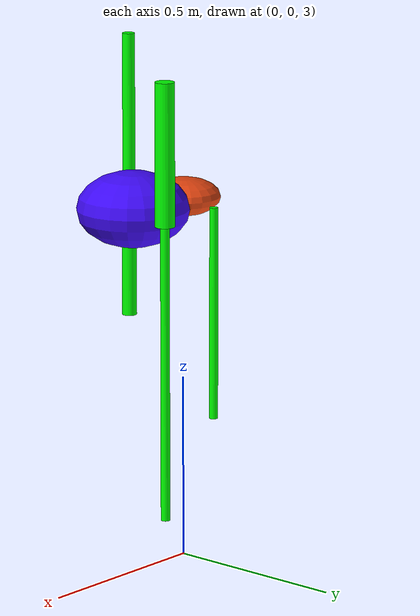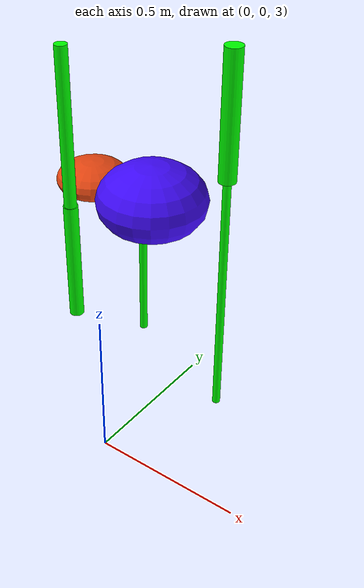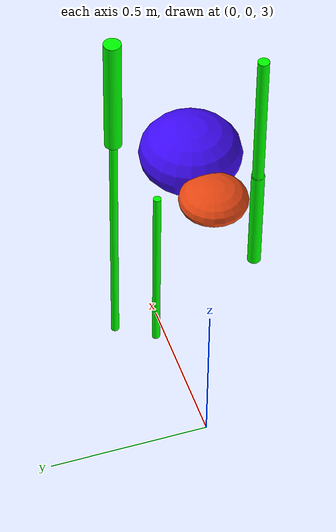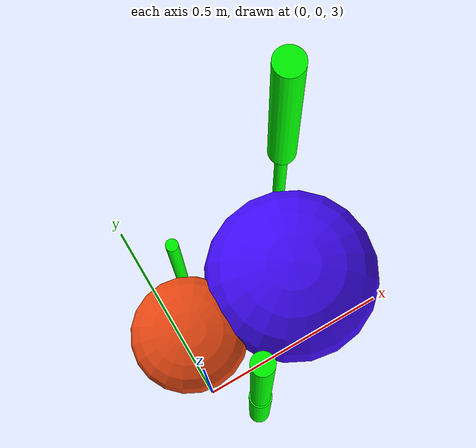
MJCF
<mujoco model="unnamed_model">
  <option timestep="0.01"/>
  <visual>
    <headlight ambient="0.5 0.5 0.5"/>
  </visual>
  <default>
    <default class="/"/>
  </default>
  <worldbody>
    <light name="//unnamed_light_0" class="/" pos="0 0 3" dir="0 0 -1" diffuse="0.5 0.5 0.5"/>
    <geom name="//unnamed_geom_0" class="/" type="plane" size="50 50 0.10000000000000001"/>
    <body name="//unnamed_body_0" pos="0 0 4">
      <joint name="//unnamed_joint_0" class="/" type="free"/>
      <geom name="//unnamed_geom_1" class="/" type="ellipsoid" size="0.10000000000000001 0.10000000000000001 0.050000000000000003" rgba="0.91000000000000003 0.27800000000000002 0.070999999999999994 1" pos="0 0 0"/>
      <geom name="//unnamed_geom_2" class="/" type="ellipsoid" size="0.14999999999999999 0.14999999999999999 0.10000000000000001" rgba="0.247 0.035000000000000003 0.97999999999999998 1" pos="0.20000000000000001 0 0"/>
      <body name="limb1" pos="0.050000000000000003 0.14999999999999999 -0.28776949967436416">
        <geom name="//unnamed_geom_3" class="/" type="cylinder" size="0.011519885648044941 0.28776949967436416" rgba="0 1 0 1"/>
        <joint name="limb1_joint" class="/" type="hinge" pos="0 0 0.28776949967436416" axis="0 1 0" range="-45 45"/>
      </body>
      <body name="limb2" pos="0.050000000000000003 -0.14999999999999999 -0.17011961616703841">
        <geom name="//unnamed_geom_4" class="/" type="cylinder" size="0.019646572941031962 0.17011961616703841" rgba="0 1 0 1"/>
        <joint name="limb2_joint" class="/" type="hinge" pos="0 0 0.17011961616703841" axis="0 1 0" range="-45 45"/>
      </body>
      <body name="limb3" pos="0.29999999999999999 0.20000000000000001 -0.39483240670167252">
        <geom name="//unnamed_geom_5" class="/" type="cylinder" size="0.01207307090812167 0.39483240670167252" rgba="0 1 0 1"/>
        <joint name="limb3_joint" class="/" type="hinge" pos="0 0 0.39483240670167252" axis="0 1 0" range="-45 45"/>
      </body>
      <body name="back_limb1" pos="0.050000000000000003 -0.14999999999999999 0.21465220423279086">
        <geom name="//unnamed_geom_6" class="/" type="cylinder" size="0.016785271627413133 0.21465220423279086" rgba="0 1 0 1"/>
        <joint name="back_limb1_joint" class="/" type="hinge" pos="0 0 -0.21465220423279086" axis="0 1 0" range="-45 45"/>
      </body>
      <body name="back_limb2" pos="0.29999999999999999 0.20000000000000001 0.18882671810588667">
        <geom name="//unnamed_geom_7" class="/" type="cylinder" size="0.025919505710851123 0.18882671810588667" rgba="0 1 0 1"/>
        <joint name="back_limb2_joint" class="/" type="hinge" pos="0 0 -0.18882671810588667" axis="0 1 0" range="-45 45"/>
      </body>
    </body>
  </worldbody>
  <actuator>
    <motor name="motor_limb1_joint" class="/" ctrllimited="true" ctrlrange="-45 45" gear="1" joint="limb1_joint"/>
    <motor name="motor_limb2_joint" class="/" ctrllimited="true" ctrlrange="-45 45" gear="1" joint="limb2_joint"/>
    <motor name="motor_limb3_joint" class="/" ctrllimited="true" ctrlrange="-45 45" gear="1" joint="limb3_joint"/>
    <motor name="motor_back_back_limb1_joint" class="/" ctrllimited="true" ctrlrange="-45 45" gear="1" joint="back_limb1_joint"/>
    <motor name="motor_back_back_limb2_joint" class="/" ctrllimited="true" ctrlrange="-45 45" gear="1" joint="back_limb2_joint"/>
  </actuator>
</mujoco>
